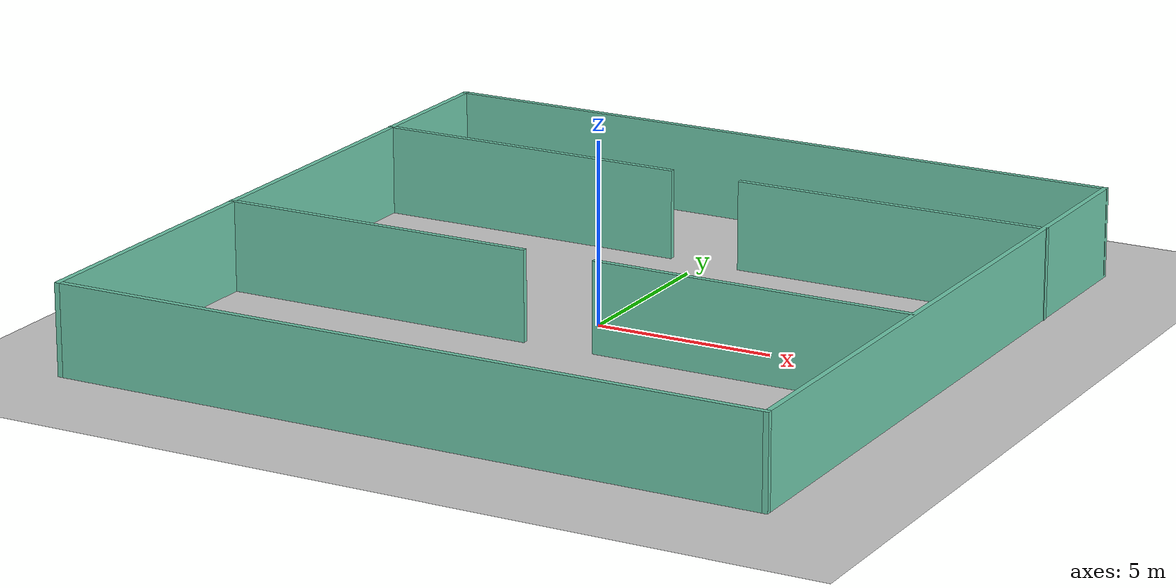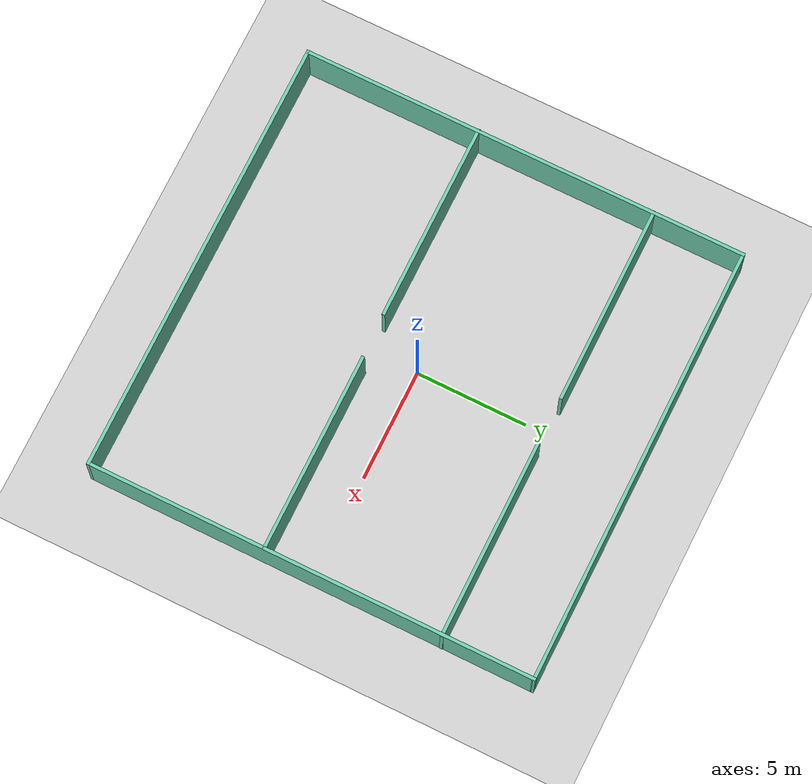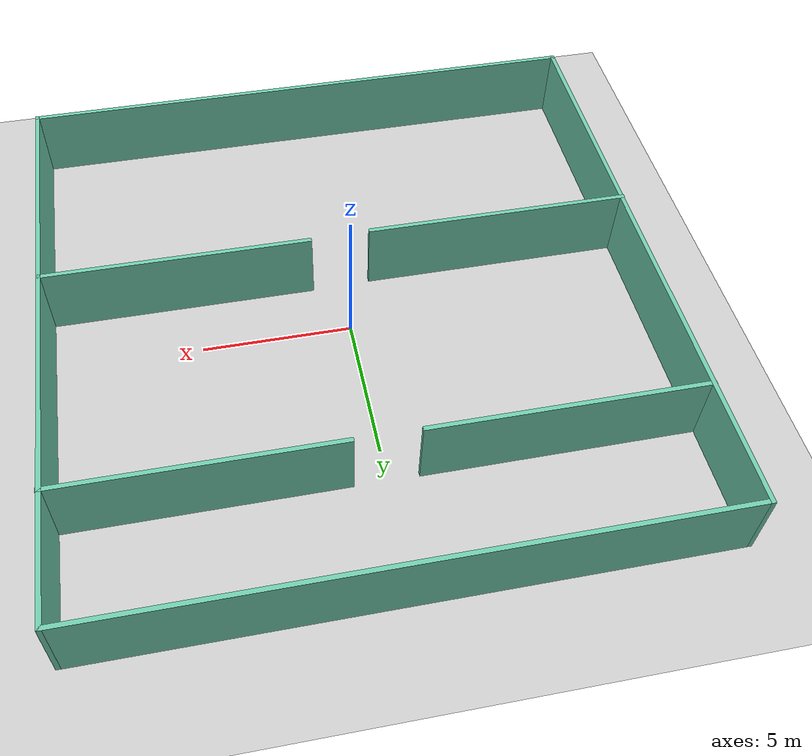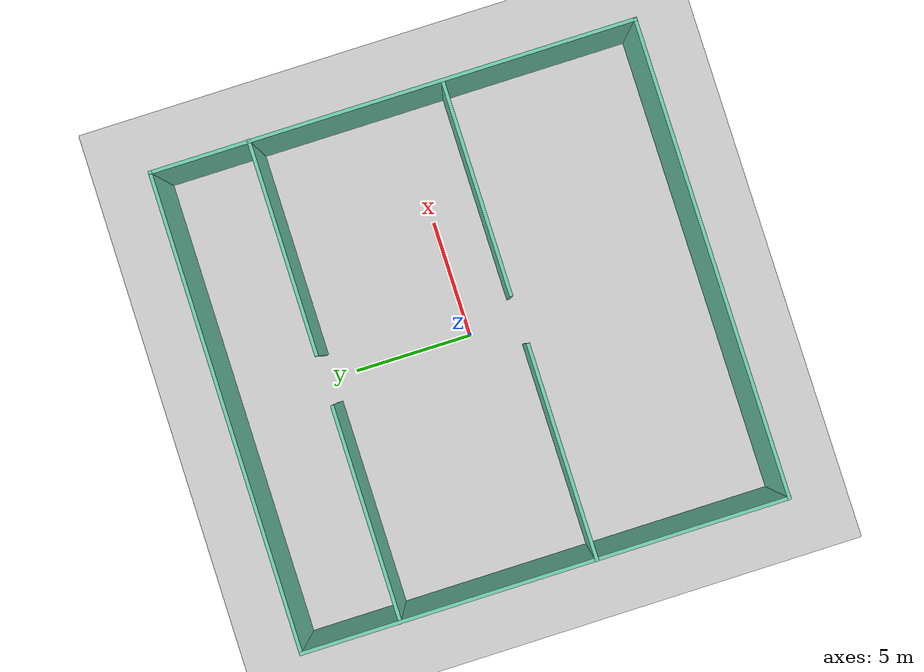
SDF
<sdf version="1.7">
 <world name="default">
  <plugin name="gazebo_ros_state" filename="libgazebo_ros_state.so">
   <ros><namespace>/test</namespace><argument>model_states:=model_states_demo</argument></ros>
   <update_rate>100.0</update_rate>
  </plugin>
  <light name="sun" type="directional">
   <pose>0 0 10 0 -0 0</pose>
   <diffuse>0.8 0.8 0.8 1</diffuse>
   <specular>0.2 0.2 0.2 1</specular>
   <attenuation>
    <range>1000</range>
    <constant>0.9</constant>
    <linear>0.01</linear>
    <quadratic>0.001</quadratic>
   </attenuation>
   <direction>-0.5 0.1 -0.9</direction>
   <spot><inner_angle>0</inner_angle><outer_angle>0</outer_angle><falloff>0</falloff></spot>
  </light>
  <model name="ground_plane">
   <static>1</static>
   <link name="link">
    <collision name="collision">
     <geometry><plane><normal>0 0 1</normal><size>100 100</size></plane></geometry>
     <surface>
      <contact><collide_bitmask>65535</collide_bitmask></contact>
      <friction><ode><mu>100</mu><mu2>50</mu2></ode></friction>
     </surface>
    </collision>
    <visual name="visual">
     <cast_shadows>0</cast_shadows>
     <geometry><plane><normal>0 0 1</normal><size>100 100</size></plane></geometry>
     <material>
      <script><uri>file://media/materials/scripts/gazebo.material</uri><name>Gazebo/Grey</name></script>
     </material>
    </visual>
   </link>
  </model>
  <gravity>0 0 -9.8</gravity>
  <magnetic_field>6e-06 2.3e-05 -4.2e-05</magnetic_field>
  <atmosphere type="adiabatic"/>
  <scene><ambient>0.4 0.4 0.4 1</ambient><background>0.7 0.7 0.7 1</background><shadows>1</shadows></scene>
  <spherical_coordinates>
   <surface_model>EARTH_WGS84</surface_model>
   <latitude_deg>0</latitude_deg>
   <longitude_deg>0</longitude_deg>
   <elevation>0</elevation>
   <heading_deg>0</heading_deg>
  </spherical_coordinates>
  <model name="social_scenarios">
   <pose>0.004949 0.044462 0 0 -0 0</pose>
   <link name="Wall_0">
    <collision name="Wall_0_Collision">
     <geometry><box><size>20 0.15 2.5</size></box></geometry>
     <pose>0 0 1.25 0 -0 0</pose>
    </collision>
    <visual name="Wall_0_Visual">
     <pose>0 0 1.25 0 -0 0</pose>
     <geometry><box><size>20 0.15 2.5</size></box></geometry>
     <material>
      <script><uri>file://media/materials/scripts/gazebo.material</uri><name>Gazebo/Grey</name></script>
      <ambient>0.435294 0.796078 0.67451 1</ambient>
     </material>
     <meta><layer>0</layer></meta>
    </visual>
    <pose>-0.007493 -10.066 0 0 -0 0</pose>
   </link>
   <link name="Wall_10">
    <collision name="Wall_10_Collision">
     <geometry><box><size>9 0.15 2.5</size></box></geometry>
     <pose>0 0 1.25 0 -0 0</pose>
    </collision>
    <visual name="Wall_10_Visual">
     <pose>0 0 1.25 0 -0 0</pose>
     <geometry><box><size>9 0.15 2.5</size></box></geometry>
     <material>
      <script><uri>file://media/materials/scripts/gazebo.material</uri><name>Gazebo/Grey</name></script>
      <ambient>0.435294 0.796078 0.67451 1</ambient>
     </material>
     <meta><layer>0</layer></meta>
    </visual>
    <pose>5.52116 5.97047 0 0 -0 3.14159</pose>
   </link>
   <link name="Wall_12">
    <collision name="Wall_12_Collision">
     <geometry><box><size>9 0.15 2.5</size></box></geometry>
     <pose>0 0 1.25 0 -0 0</pose>
    </collision>
    <visual name="Wall_12_Visual">
     <pose>0 0 1.25 0 -0 0</pose>
     <geometry><box><size>9 0.15 2.5</size></box></geometry>
     <material>
      <script><uri>file://media/materials/scripts/gazebo.material</uri><name>Gazebo/Grey</name></script>
      <ambient>0.435294 0.796078 0.67451 1</ambient>
     </material>
     <meta><layer>0</layer></meta>
    </visual>
    <pose>-5.52116 -2.11519 0 0 -0 0</pose>
   </link>
   <link name="Wall_14">
    <collision name="Wall_14_Collision">
     <geometry><box><size>9 0.15 2.5</size></box></geometry>
     <pose>0 0 1.25 0 -0 0</pose>
    </collision>
    <visual name="Wall_14_Visual">
     <pose>0 0 1.25 0 -0 0</pose>
     <geometry><box><size>9 0.15 2.5</size></box></geometry>
     <material>
      <script><uri>file://media/materials/scripts/gazebo.material</uri><name>Gazebo/Grey</name></script>
      <ambient>0.435294 0.796078 0.67451 1</ambient>
     </material>
     <meta><layer>0</layer></meta>
    </visual>
    <pose>5.44071 -2.05485 0 0 -0 3.14159</pose>
   </link>
   <link name="Wall_2">
    <collision name="Wall_2_Collision">
     <geometry><box><size>20 0.15 2.5</size></box></geometry>
     <pose>0 0 1.25 0 -0 0</pose>
    </collision>
    <visual name="Wall_2_Visual">
     <pose>0 0 1.25 0 -0 0</pose>
     <geometry><box><size>20 0.15 2.5</size></box></geometry>
     <material>
      <script><uri>file://media/materials/scripts/gazebo.material</uri><name>Gazebo/Grey</name></script>
      <ambient>0.435294 0.796078 0.67451 1</ambient>
     </material>
     <meta><layer>0</layer></meta>
    </visual>
    <pose>0.000801 10.066 0 0 -0 0</pose>
   </link>
   <link name="Wall_4">
    <collision name="Wall_4_Collision">
     <geometry><box><size>20.2821 0.15 2.5</size></box></geometry>
     <pose>0 0 1.25 0 -0 0</pose>
    </collision>
    <visual name="Wall_4_Visual">
     <pose>0 0 1.25 0 -0 0</pose>
     <geometry><box><size>20.2821 0.15 2.5</size></box></geometry>
     <material>
      <script><uri>file://media/materials/scripts/gazebo.material</uri><name>Gazebo/Grey</name></script>
      <ambient>0.435294 0.796078 0.67451 1</ambient>
     </material>
     <meta><layer>0</layer></meta>
    </visual>
    <pose>-9.92835 -0 0 0 -0 -1.57121</pose>
   </link>
   <link name="Wall_6">
    <collision name="Wall_6_Collision">
     <geometry><box><size>20.2821 0.15 2.5</size></box></geometry>
     <pose>0 0 1.25 0 -0 0</pose>
    </collision>
    <visual name="Wall_6_Visual">
     <pose>0 0 1.25 0 -0 0</pose>
     <geometry><box><size>20.2821 0.15 2.5</size></box></geometry>
     <material>
      <script><uri>file://media/materials/scripts/gazebo.material</uri><name>Gazebo/Grey</name></script>
      <ambient>0.435294 0.796078 0.67451 1</ambient>
     </material>
     <meta><layer>0</layer></meta>
    </visual>
    <pose>9.92165 -0 0 0 -0 -1.57121</pose>
   </link>
   <link name="Wall_8">
    <collision name="Wall_8_Collision">
     <geometry><box><size>9 0.15 2.5</size></box></geometry>
     <pose>0 0 1.25 0 -0 0</pose>
    </collision>
    <visual name="Wall_8_Visual">
     <pose>0 0 1.25 0 -0 0</pose>
     <geometry><box><size>9 0.15 2.5</size></box></geometry>
     <material>
      <script><uri>file://media/materials/scripts/gazebo.material</uri><name>Gazebo/Grey</name></script>
      <ambient>0.435294 0.796078 0.67451 1</ambient>
     </material>
     <meta><layer>0</layer></meta>
    </visual>
    <pose>-5.51 5.9809 0 0 -0 0</pose>
   </link>
   <static>1</static>
  </model>
 </world>
</sdf>
